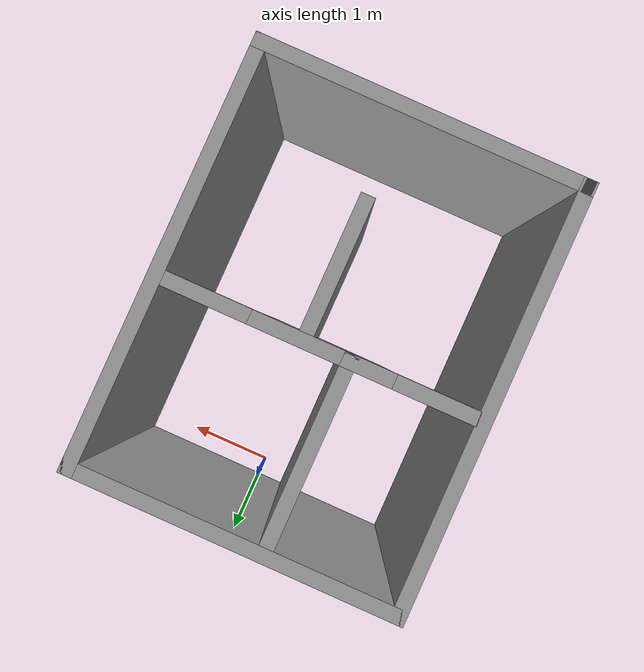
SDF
<?xml version='1.0'?>
<sdf version='1.7'>
  <model name='update'>
    <pose>-0.085 -1.885 0 0 -0 0</pose>
    <link name='Wall_11'>
      <pose>-0.98 0.215 0 0 -0 0</pose>
      <visual name='Wall_11_Visual_0'>
        <pose>-0.7175 0 1.25 0 -0 0</pose>
        <geometry>
          <box>
            <size>0.065 0.15 2.5</size>
          </box>
        </geometry>
        <material>
          <script>
            <uri>file://media/materials/scripts/gazebo.material</uri>
            <name>Gazebo/Grey</name>
          </script>
          <ambient>1 1 1 1</ambient>
        </material>
        <meta>
          <layer>0</layer>
        </meta>
      </visual>
      <collision name='Wall_11_Collision_0'>
        <geometry>
          <box>
            <size>0.065 0.15 2.5</size>
          </box>
        </geometry>
        <pose>-0.7175 0 1.25 0 -0 0</pose>
      </collision>
      <visual name='Wall_11_Visual_1'>
        <pose>0.4825 0 1.25 0 -0 0</pose>
        <geometry>
          <box>
            <size>0.535 0.15 2.5</size>
          </box>
        </geometry>
        <material>
          <script>
            <uri>file://media/materials/scripts/gazebo.material</uri>
            <name>Gazebo/Grey</name>
          </script>
          <ambient>1 1 1 1</ambient>
        </material>
        <meta>
          <layer>0</layer>
        </meta>
      </visual>
      <collision name='Wall_11_Collision_1'>
        <geometry>
          <box>
            <size>0.535 0.15 2.5</size>
          </box>
        </geometry>
        <pose>0.4825 0 1.25 0 -0 0</pose>
      </collision>
      <visual name='Wall_11_Visual_2'>
        <pose>-0.235 0 2.25 0 -0 0</pose>
        <geometry>
          <box>
            <size>0.9 0.15 0.5</size>
          </box>
        </geometry>
        <material>
          <script>
            <uri>file://media/materials/scripts/gazebo.material</uri>
            <name>Gazebo/Grey</name>
          </script>
          <ambient>1 1 1 1</ambient>
        </material>
        <meta>
          <layer>0</layer>
        </meta>
      </visual>
      <collision name='Wall_11_Collision_2'>
        <geometry>
          <box>
            <size>0.9 0.15 0.5</size>
          </box>
        </geometry>
        <pose>-0.235 0 2.25 0 -0 0</pose>
      </collision>
    </link>
    <link name='Wall_12'>
      <collision name='Wall_12_Collision'>
        <geometry>
          <box>
            <size>2 0.15 2.5</size>
          </box>
        </geometry>
        <pose>0 0 1.25 0 -0 0</pose>
      </collision>
      <visual name='Wall_12_Visual'>
        <pose>0 0 1.25 0 -0 0</pose>
        <geometry>
          <box>
            <size>2 0.15 2.5</size>
          </box>
        </geometry>
        <material>
          <script>
            <uri>file://media/materials/scripts/gazebo.material</uri>
            <name>Gazebo/Grey</name>
          </script>
          <ambient>1 1 1 1</ambient>
        </material>
        <meta>
          <layer>0</layer>
        </meta>
      </visual>
      <pose>-0.305 1.14 0 0 -0 1.5708</pose>
    </link>
    <link name='Wall_14'>
      <pose>0.62 0.215 0 0 -0 0</pose>
      <visual name='Wall_14_Visual_0'>
        <pose>-0.4525 0 1.25 0 -0 0</pose>
        <geometry>
          <box>
            <size>1.095 0.15 2.5</size>
          </box>
        </geometry>
        <material>
          <script>
            <uri>file://media/materials/scripts/gazebo.material</uri>
            <name>Gazebo/Grey</name>
          </script>
          <ambient>1 1 1 1</ambient>
        </material>
        <meta>
          <layer>0</layer>
        </meta>
      </visual>
      <collision name='Wall_14_Collision_0'>
        <geometry>
          <box>
            <size>1.095 0.15 2.5</size>
          </box>
        </geometry>
        <pose>-0.4525 0 1.25 0 -0 0</pose>
      </collision>
      <visual name='Wall_14_Visual_1'>
        <pose>0.9975 0 1.25 0 -0 0</pose>
        <geometry>
          <box>
            <size>0.005 0.15 2.5</size>
          </box>
        </geometry>
        <material>
          <script>
            <uri>file://media/materials/scripts/gazebo.material</uri>
            <name>Gazebo/Grey</name>
          </script>
          <ambient>1 1 1 1</ambient>
        </material>
        <meta>
          <layer>0</layer>
        </meta>
      </visual>
      <collision name='Wall_14_Collision_1'>
        <geometry>
          <box>
            <size>0.005 0.15 2.5</size>
          </box>
        </geometry>
        <pose>0.9975 0 1.25 0 -0 0</pose>
      </collision>
      <visual name='Wall_14_Visual_2'>
        <pose>0.545 0 2.25 0 -0 0</pose>
        <geometry>
          <box>
            <size>0.9 0.15 0.5</size>
          </box>
        </geometry>
        <material>
          <script>
            <uri>file://media/materials/scripts/gazebo.material</uri>
            <name>Gazebo/Grey</name>
          </script>
          <ambient>1 1 1 1</ambient>
        </material>
        <meta>
          <layer>0</layer>
        </meta>
      </visual>
      <collision name='Wall_14_Collision_2'>
        <geometry>
          <box>
            <size>0.9 0.15 0.5</size>
          </box>
        </geometry>
        <pose>0.545 0 2.25 0 -0 0</pose>
      </collision>
    </link>
    <link name='Wall_16'>
      <collision name='Wall_16_Collision'>
        <geometry>
          <box>
            <size>1.5 0.15 2.5</size>
          </box>
        </geometry>
        <pose>0 0 1.25 0 -0 0</pose>
      </collision>
      <visual name='Wall_16_Visual'>
        <pose>0 0 1.25 0 -0 0</pose>
        <geometry>
          <box>
            <size>1.5 0.15 2.5</size>
          </box>
        </geometry>
        <material>
          <script>
            <uri>file://media/materials/scripts/gazebo.material</uri>
            <name>Gazebo/Grey</name>
          </script>
          <ambient>1 1 1 1</ambient>
        </material>
        <meta>
          <layer>0</layer>
        </meta>
      </visual>
      <pose>0.165 -0.52 0 0 -0 -1.5708</pose>
    </link>
    <link name='Wall_6'>
      <collision name='Wall_6_Collision'>
        <geometry>
          <box>
            <size>4.5 0.15 2.5</size>
          </box>
        </geometry>
        <pose>0 0 1.25 0 -0 0</pose>
      </collision>
      <visual name='Wall_6_Visual'>
        <pose>0 0 1.25 0 -0 0</pose>
        <geometry>
          <box>
            <size>4.5 0.15 2.5</size>
          </box>
        </geometry>
        <material>
          <script>
            <uri>file://media/materials/scripts/gazebo.material</uri>
            <name>Gazebo/Grey</name>
          </script>
          <ambient>1 1 1 1</ambient>
        </material>
        <meta>
          <layer>0</layer>
        </meta>
      </visual>
      <pose>-1.675 0 0 0 -0 -1.5708</pose>
    </link>
    <link name='Wall_7'>
      <collision name='Wall_7_Collision'>
        <geometry>
          <box>
            <size>3.5 0.15 2.5</size>
          </box>
        </geometry>
        <pose>0 0 1.25 0 -0 0</pose>
      </collision>
      <visual name='Wall_7_Visual'>
        <pose>0 0 1.25 0 -0 0</pose>
        <geometry>
          <box>
            <size>3.5 0.15 2.5</size>
          </box>
        </geometry>
        <material>
          <script>
            <uri>file://media/materials/scripts/gazebo.material</uri>
            <name>Gazebo/Grey</name>
          </script>
          <ambient>1 1 1 1</ambient>
        </material>
        <meta>
          <layer>0</layer>
        </meta>
      </visual>
      <pose>-0 -2.175 0 0 -0 0</pose>
    </link>
    <link name='Wall_8'>
      <collision name='Wall_8_Collision'>
        <geometry>
          <box>
            <size>4.5 0.15 2.5</size>
          </box>
        </geometry>
        <pose>0 0 1.25 0 -0 0</pose>
      </collision>
      <visual name='Wall_8_Visual'>
        <pose>0 0 1.25 0 -0 0</pose>
        <geometry>
          <box>
            <size>4.5 0.15 2.5</size>
          </box>
        </geometry>
        <material>
          <script>
            <uri>file://media/materials/scripts/gazebo.material</uri>
            <name>Gazebo/Grey</name>
          </script>
          <ambient>1 1 1 1</ambient>
        </material>
        <meta>
          <layer>0</layer>
        </meta>
      </visual>
      <pose>1.675 0 0 0 -0 1.5708</pose>
    </link>
    <link name='Wall_9'>
      <collision name='Wall_9_Collision'>
        <geometry>
          <box>
            <size>3.5 0.15 2.5</size>
          </box>
        </geometry>
        <pose>0 0 1.25 0 -0 0</pose>
      </collision>
      <visual name='Wall_9_Visual'>
        <pose>0 0 1.25 0 -0 0</pose>
        <geometry>
          <box>
            <size>3.5 0.15 2.5</size>
          </box>
        </geometry>
        <material>
          <script>
            <uri>file://media/materials/scripts/gazebo.material</uri>
            <name>Gazebo/Grey</name>
          </script>
          <ambient>1 1 1 1</ambient>
        </material>
        <meta>
          <layer>0</layer>
        </meta>
      </visual>
      <pose>-0 2.175 0 0 -0 3.14159</pose>
    </link>
    <static>1</static>
  </model>
</sdf>
